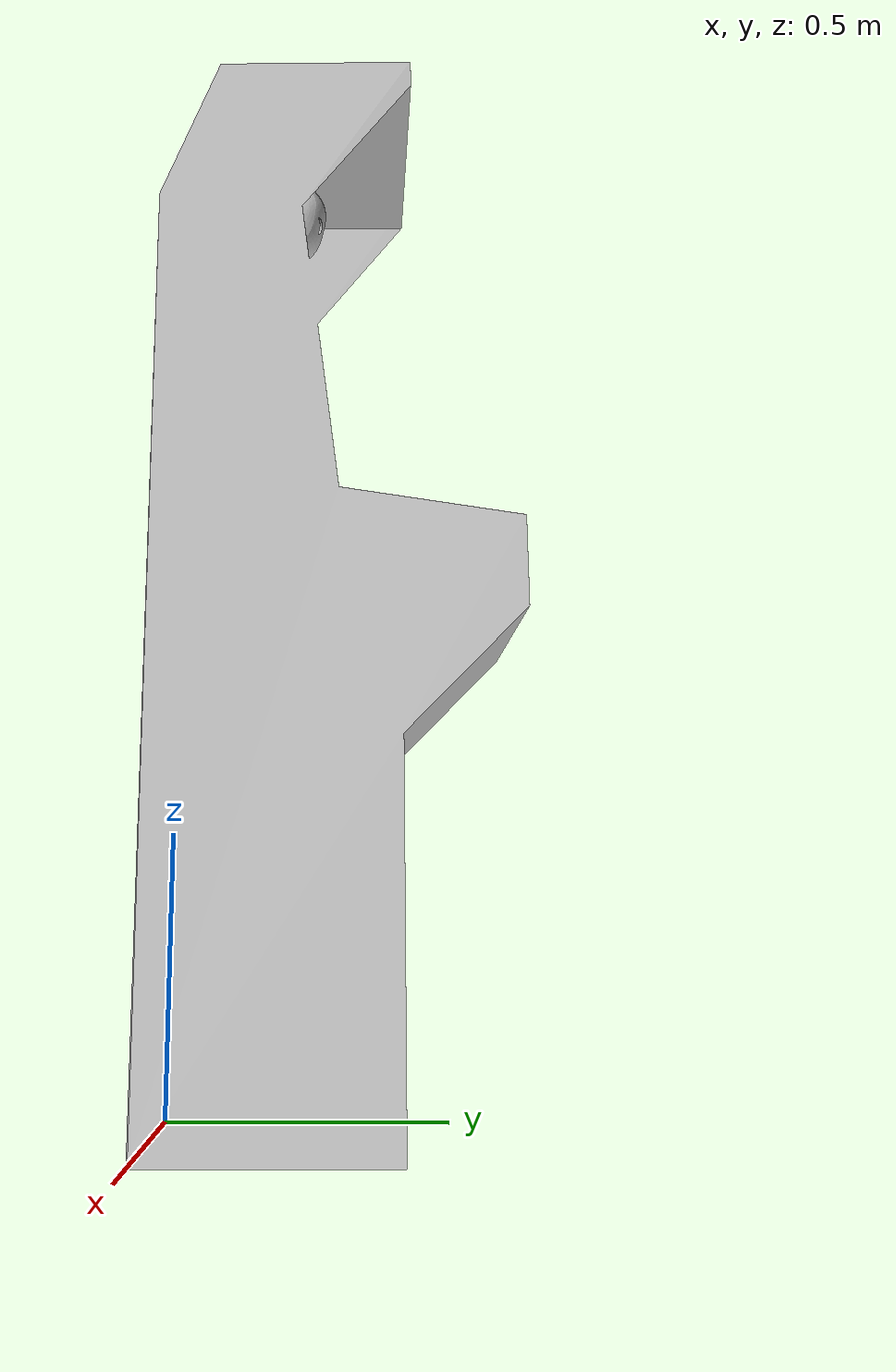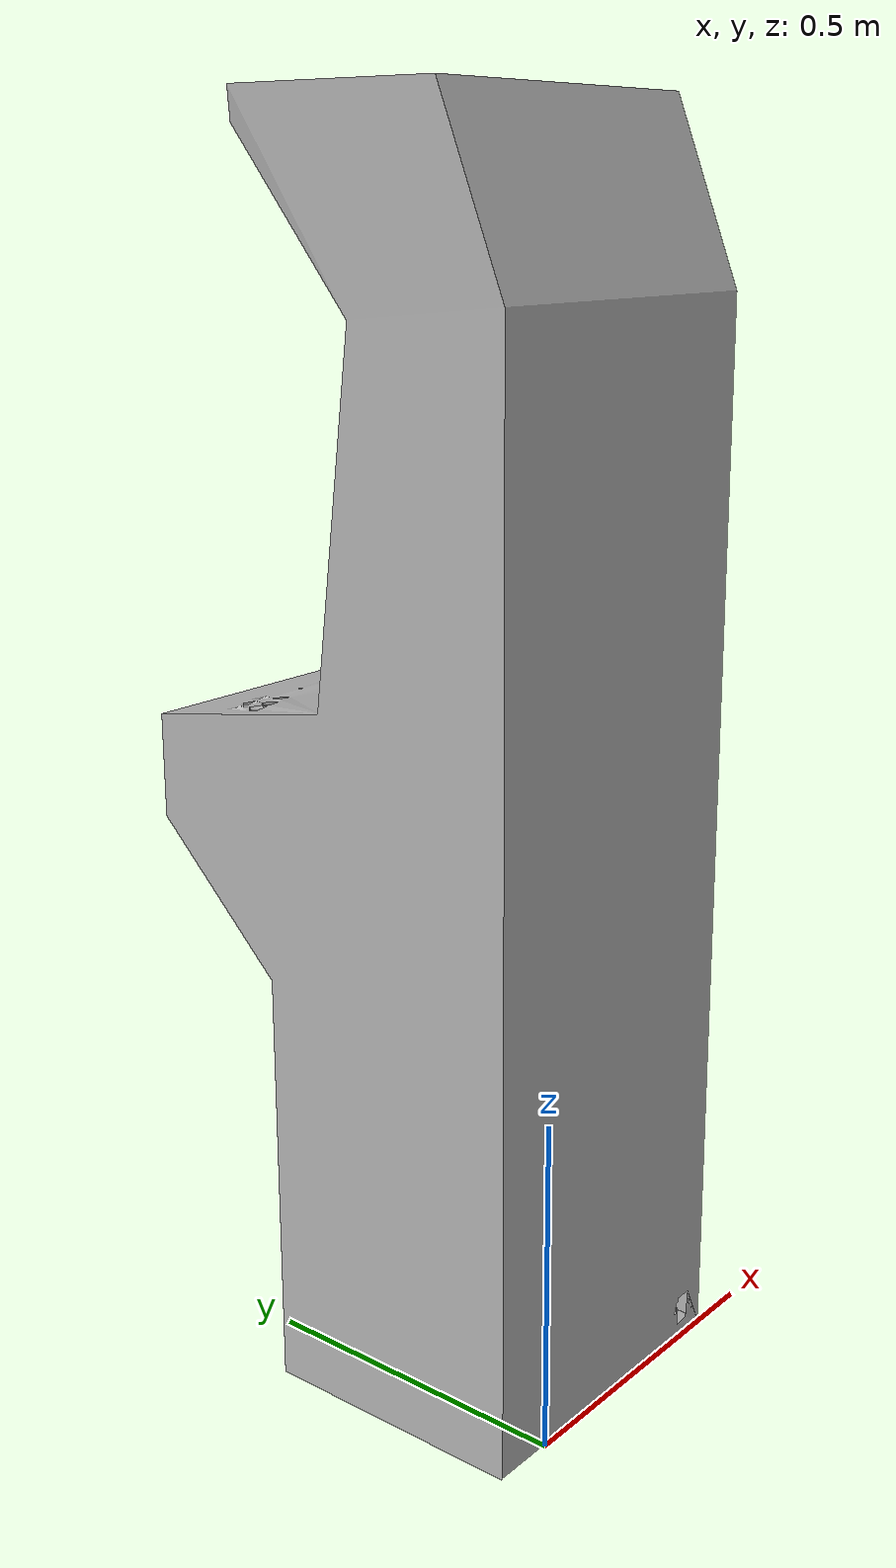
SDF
<sdf version="1.6">
	<model name="roboy_arcade_maschine">
		<link name="base">
			<self_collide>false</self_collide>
			<pose frame="">0.1525000029802322 0.20678603062063886 0.0011737747325314249 0.0 -0.0 0.0</pose>
			<inertial>
				<pose frame="">0.0 0.0 0.0 0 0 0</pose>
				<mass>151.77711515782906</mass>
				<inertia>
					<ixx>190.96058225933902</ixx>
					<ixy>-4.977169987468404</ixy>
					<ixz>-28.60027380178257</ixz>
					<iyy>188.2339461446155</iyy>
					<iyz>-21.302560456800382</iyz>
					<izz>20.711764873664425</izz>
				</inertia>
			</inertial>
			<collision name="base_collision">
				<geometry>
					<mesh>
						<uri>model://roboy_arcade_maschine/meshes/collisions/base.stl</uri>
						<scale>0.001 0.001 0.001</scale>
					</mesh>
				</geometry>
			</collision>
			<visual name="base_visual">
				<geometry>
					<mesh>
						<uri>model://roboy_arcade_maschine/meshes/visuals/base.stl</uri>
						<scale>0.001 0.001 0.001</scale>
					</mesh>
				</geometry>
			</visual>
		</link>
		<link name="head">
			<self_collide>false</self_collide>
			<pose frame="">0.15261995464777886 0.23623748028330993 1.6718352355907273 0.0 -0.0 0.0</pose>
			<inertial>
				<pose frame="">0.0 0.0 0.0 0 0 0</pose>
				<mass>4.589897050637304</mass>
				<inertia>
					<ixx>13.095311389186126</ixx>
					<ixy>-0.16548629525777242</ixy>
					<ixz>-1.8121347109316952</ixz>
					<iyy>12.948631781783467</iyy>
					<iyz>-1.1711363659947223</iyz>
					<izz>0.370055306412621</izz>
				</inertia>
			</inertial>
			<collision name="head_collision">
				<geometry>
					<mesh>
						<uri>model://roboy_arcade_maschine/meshes/collisions/head.stl</uri>
						<scale>0.001 0.001 0.001</scale>
					</mesh>
				</geometry>
			</collision>
			<visual name="head_visual">
				<geometry>
					<mesh>
						<uri>model://roboy_arcade_maschine/meshes/visuals/head.stl</uri>
						<scale>0.001 0.001 0.001</scale>
					</mesh>
				</geometry>
			</visual>
		</link>
		<link name="sphere_link1">
			<self_collide>false</self_collide>
			<pose frame="">0.15249999999999983 0.19751755112547265 1.5796448796709621 0.0 -0.0 0.0</pose>
			<inertial>
				<pose frame="">0.0 0.0 0.0 0 0 0</pose>
				<mass>0.0035398559741585114</mass>
				<inertia>
					<ixx>0.008971106541110758</ixx>
					<ixy>-0.0001066255117112812</ixy>
					<ixz>-0.0011044619253575195</ixz>
					<iyy>0.008915329267686532</iyy>
					<iyz>-0.0008527365930637039</iyz>
					<izz>0.0002205057727334384</izz>
				</inertia>
			</inertial>
			<collision name="sphere_link1_collision">
				<geometry>
					<mesh>
						<uri>model://roboy_arcade_maschine/meshes/collisions/sphere_link1.stl</uri>
						<scale>0.001 0.001 0.001</scale>
					</mesh>
				</geometry>
			</collision>
			<visual name="sphere_link1_visual">
				<geometry>
					<mesh>
						<uri>model://roboy_arcade_maschine/meshes/visuals/sphere_link1.stl</uri>
						<scale>0.001 0.001 0.001</scale>
					</mesh>
				</geometry>
			</visual>
		</link>
		<link name="sphere_link2">
			<self_collide>false</self_collide>
			<pose frame="">0.15250000000000008 0.19751755109172833 1.5796448796331028 0.0 -0.0 0.0</pose>
			<inertial>
				<pose frame="">0.0 0.0 0.0 0 0 0</pose>
				<mass>0.0023728702041057787</mass>
				<inertia>
					<ixx>0.006013580474758548</ixx>
					<ixy>-7.14742355454568e-05</ixy>
					<ixz>-0.0007403535095412405</ixz>
					<iyy>0.00597619131796037</iyy>
					<iyz>-0.000571614570862302</iyz>
					<izz>0.0001477938490083072</izz>
				</inertia>
			</inertial>
			<collision name="sphere_link2_collision">
				<geometry>
					<mesh>
						<uri>model://roboy_arcade_maschine/meshes/collisions/sphere_link2.stl</uri>
						<scale>0.001 0.001 0.001</scale>
					</mesh>
				</geometry>
			</collision>
			<visual name="sphere_link2_visual">
				<geometry>
					<mesh>
						<uri>model://roboy_arcade_maschine/meshes/visuals/sphere_link2.stl</uri>
						<scale>0.001 0.001 0.001</scale>
					</mesh>
				</geometry>
			</visual>
		</link>
		<joint name="sphere_axis0" type="revolute">
			<parent>base</parent>
			<child>sphere_link1</child>
			<pose frame="">1.7763568394002506e-16 -1.1935519239614224e-11 0.0 0 0 0</pose>
			<axis>
				<xyz>1.0 7.393618392593449e-17 1.2273733753721339e-17</xyz>
				<limit>
					<lower>-3.141592653589793</lower>
					<upper>3.141592653589793</upper>
				</limit>
				<use_parent_model_frame>0</use_parent_model_frame>
			</axis>
		</joint>
		<joint name="sphere_axis2" type="revolute">
			<parent>sphere_link2</parent>
			<child>head</child>
			<pose frame="">-0.00011995464777875498 -0.03871992916977281 -0.09219035591976535 0 0 0</pose>
			<axis>
				<xyz>-2.4926151761457927e-17 0.1736481776669304 0.9848077530122081</xyz>
				<limit>
					<lower>-3.141592653589793</lower>
					<upper>3.141592653589793</upper>
				</limit>
				<use_parent_model_frame>0</use_parent_model_frame>
			</axis>
		</joint>
		<joint name="sphere_axis1" type="revolute">
			<parent>sphere_link1</parent>
			<child>sphere_link2</child>
			<pose frame="">-7.105427357601002e-17 2.1808723715821545e-11 3.785885382967535e-11 0 0 0</pose>
			<axis>
				<xyz>7.068161565889416e-17 -0.9848077530122081 0.1736481776669304</xyz>
				<limit>
					<lower>-3.141592653589793</lower>
					<upper>3.141592653589793</upper>
				</limit>
				<use_parent_model_frame>0</use_parent_model_frame>
			</axis>
		</joint>
		<plugin filename="libcardsflow_gazebo_plugin.so" name="cardsflow_gazebo_plugin" />
	</model>
</sdf>
